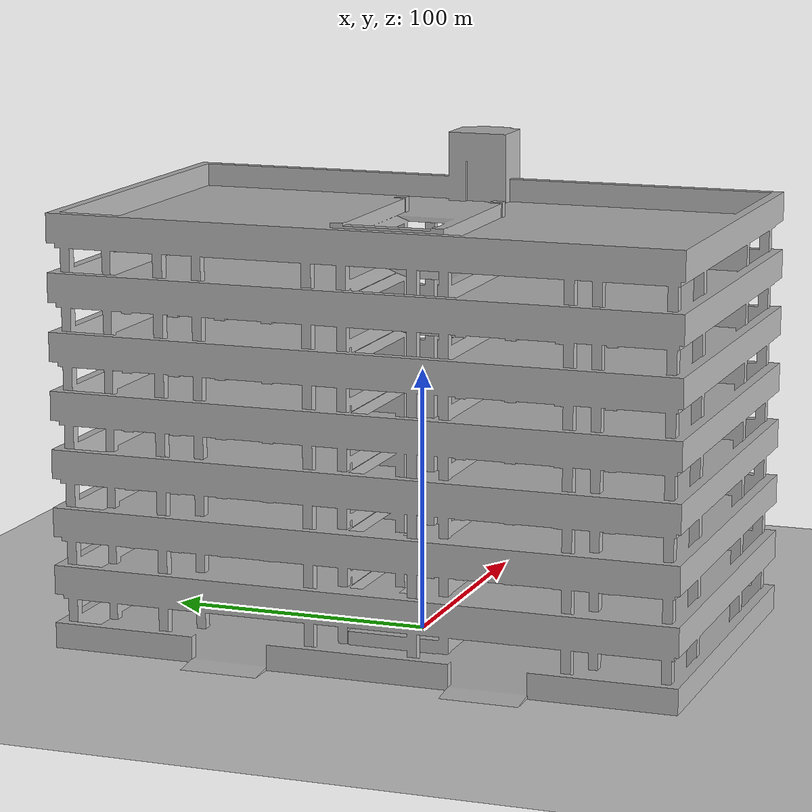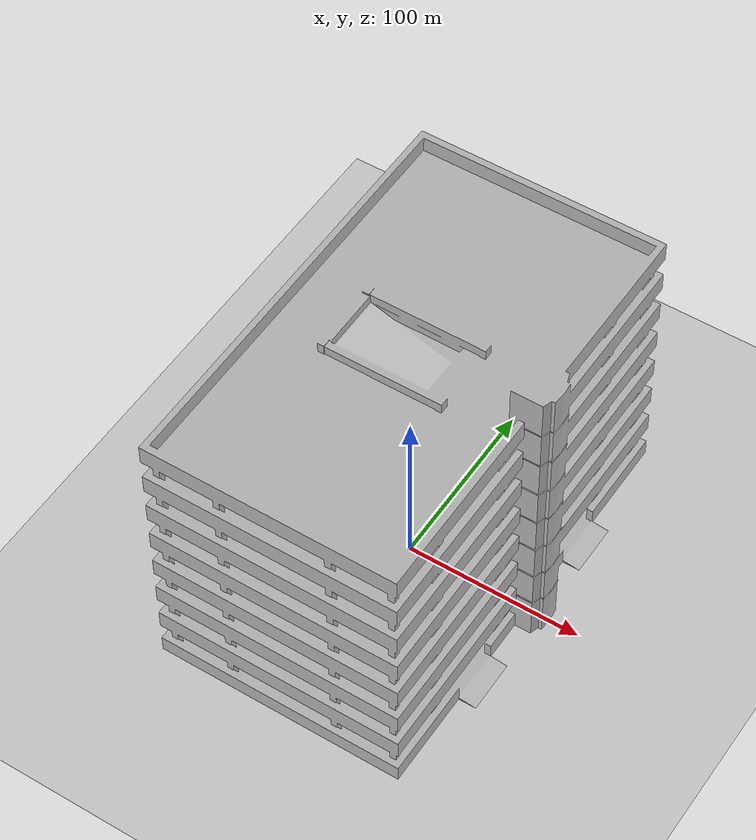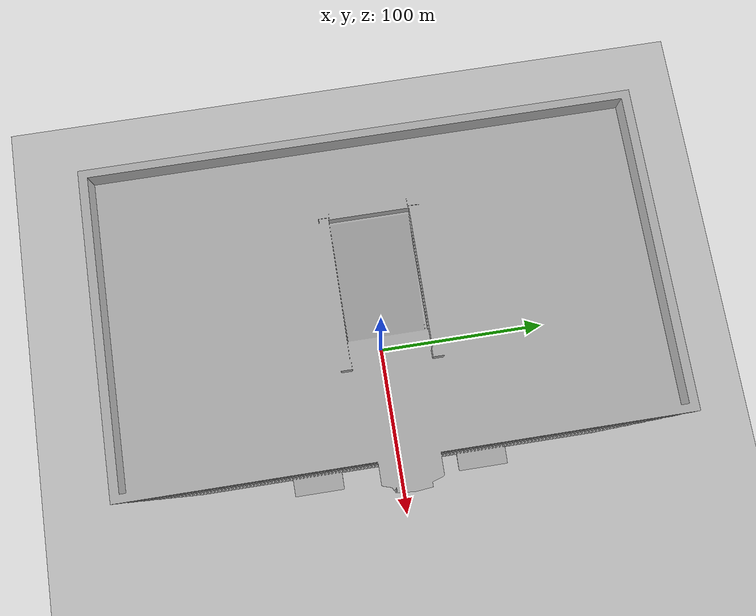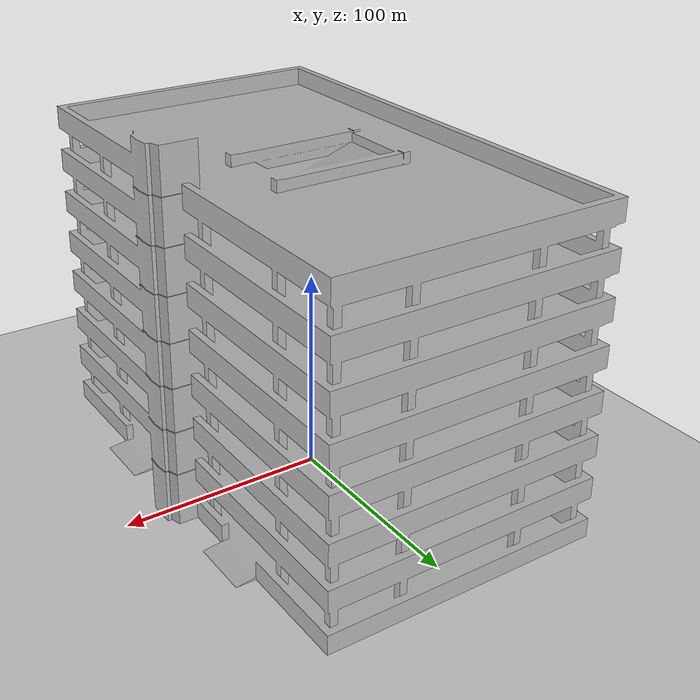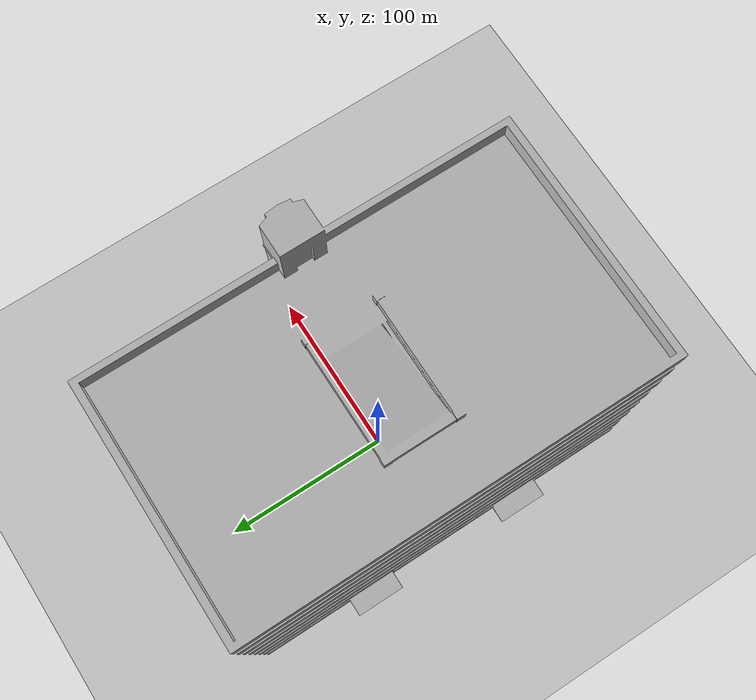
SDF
<?xml version="1.0" ?>
<sdf version="1.6">
  <world name="ackermann_world">

    <plugin filename="gz-sim-physics-system" name="gz::sim::systems::Physics"/>
    <plugin filename="gz-sim-user-commands-system" name="gz::sim::systems::UserCommands"/>
    <plugin filename="gz-sim-scene-broadcaster-system" name="gz::sim::systems::SceneBroadcaster"/>
    <plugin filename="gz-sim-contact-system" name="gz::sim::systems::Contact"/>

    <physics type="ode">
      <max_step_size>0.001</max_step_size>
      <real_time_factor>1</real_time_factor>
      <real_time_update_rate>1000</real_time_update_rate>
    </physics>

    <light name="sun" type="directional">
      <cast_shadows>true</cast_shadows>
      <pose>0 0 10 0 0 0</pose>
      <direction>-0.5 0.1 -0.9</direction>
    </light>

    <model name="ground_plane">
      <static>true</static>
      <link name="link">
        <collision name="collision">
          <geometry><plane><normal>0 0 1</normal><size>100 100</size></plane></geometry>
        </collision>
        <visual name="visual">
          <geometry><plane><normal>0 0 1</normal><size>100 100</size></plane></geometry>
          <material><ambient>0.8 0.8 0.8 1</ambient><diffuse>0.8 0.8 0.8 1</diffuse></material>
        </visual>
      </link>
    </model>

    <model name="parking_garage">
      <static>true</static>
      <link name="garage">
        <collision name="collision_garage">
          <geometry>
            <mesh>
              <uri>model://parking_garage/meshes/parking_garage.stl</uri>
              <scale>0.1 0.1 0.1</scale>
            </mesh>
          </geometry>
        </collision>
        <visual name="visual_garage">
          <pose>0 0 0 0 0 1.5708</pose>
          <geometry>
            <mesh>
              <uri>model://parking_garage/meshes/parking_garage.dae</uri>
              <scale>0.1 0.1 0.1</scale>
            </mesh>
          </geometry>
        </visual>
      </link>
    </model>

  </world>
</sdf>
